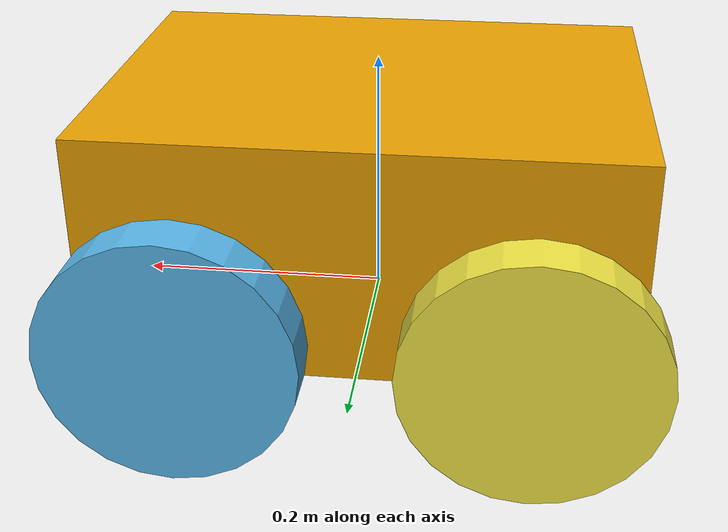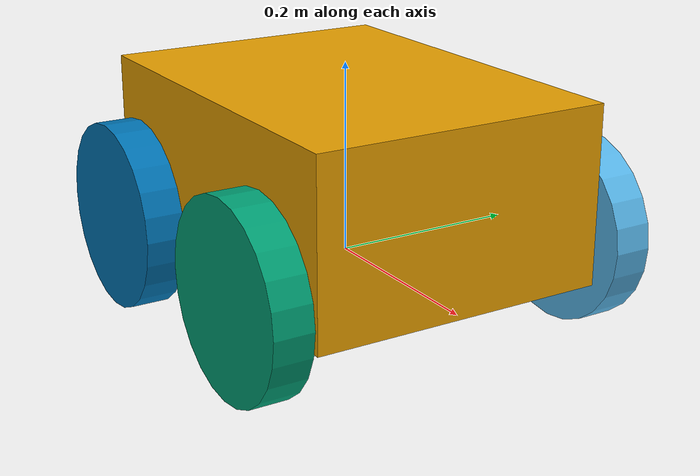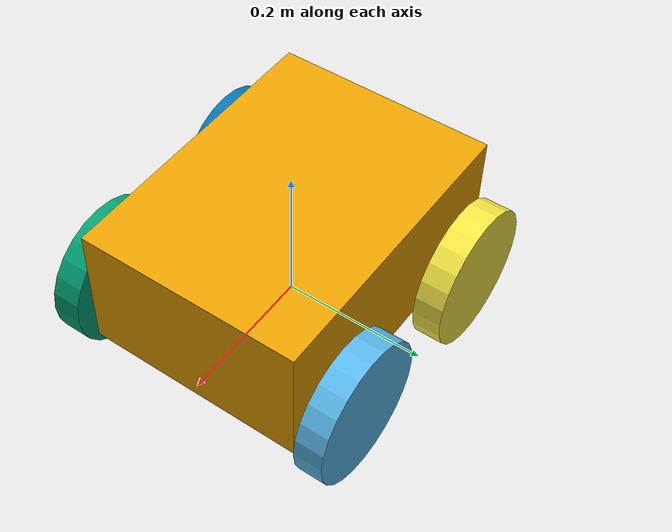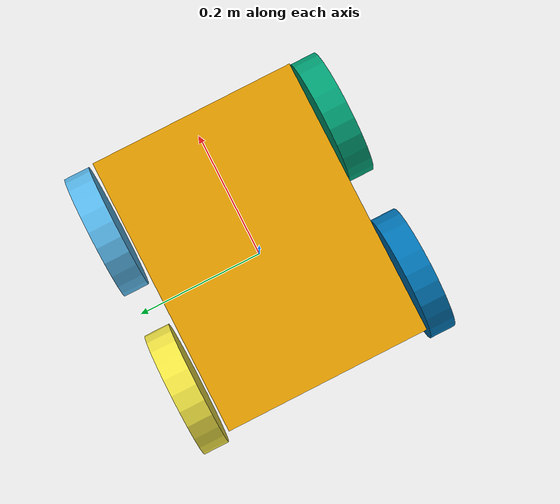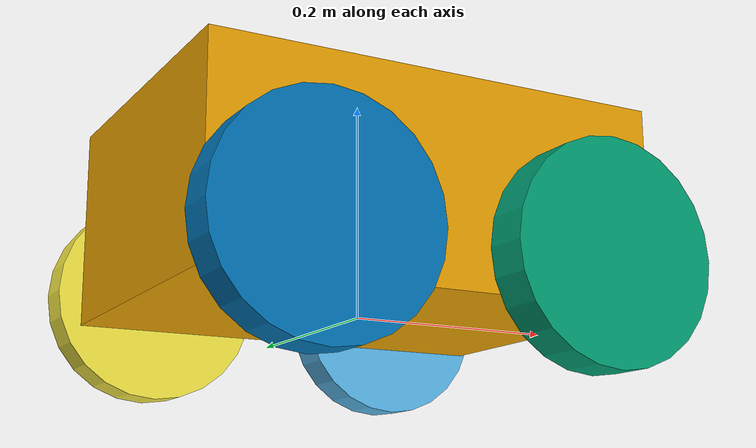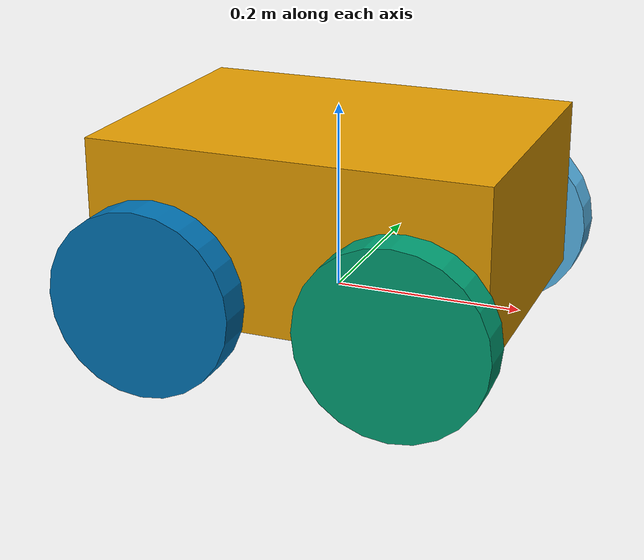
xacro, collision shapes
<?xml version='1.0' encoding='utf-8'?>
<robot name="X2" xmlns:xacro="http://ros.org/wiki/xacro">
  <xacro:arg name="name" default="X2"/>
  <xacro:property name="robot_namespace" value="$(arg name)"/>

  <link name='${robot_namespace}/base_link'>
    <inertial>
      <origin xyz='0.011999 0.002 0.066996' rpy='0 -0 0'/>
      <mass value='16.524'/>
      <inertia ixx='0.320605' ixy='-0.000800023' ixz='0.0163992' iyy='0.399205' iyz='-0.000900133' izz='0.455501'/>
    </inertial>
    <collision name='chassis_collision'>
      <origin xyz='0 0 0.092' rpy='0 -0 0'/>
      <geometry>
        <box size='0.42 0.31 0.184'/>
      </geometry>
    </collision>
    <visual name='chassis_visual'>
      <origin xyz='0 0 -0.0655' rpy='1.5708 0 -1.5708'/>
      <geometry>
        <mesh filename='package://ssci_x2_sensor_config_1/meshes/x2_chassis.dae' scale='1 1 1'/>
      </geometry>
    </visual>
    <visual name='navsat_visual_1'>
      <origin xyz='-0.18 0.126 0.1895' rpy='0 -0 0'/>
      <geometry>
        <cylinder radius='0.026' length='0.016'/>
      </geometry>
    </visual>
    <visual name='center_left_headlight_visual'>
      <origin xyz='0.22 0.05 0.0845' rpy='0 0 -3.14159'/>
      <geometry>
        <mesh filename='package://ssci_x2_sensor_config_1/meshes/headlight.dae' scale='1 1 1'/>
      </geometry>
    </visual>
    <visual name='left_headlight_visual'>
      <origin xyz='0.22 0.145 0.0845' rpy='0 0 -3.14159'/>
      <geometry>
        <mesh filename='package://ssci_x2_sensor_config_1/meshes/headlight.dae' scale='1 1 1'/>
      </geometry>
    </visual>
    <visual name='center_right_headlight_visual'>
      <origin xyz='0.22 -0.05 0.0845' rpy='0 0 -3.14159'/>
      <geometry>
        <mesh filename='package://ssci_x2_sensor_config_1/meshes/headlight.dae' scale='1 1 1'/>
      </geometry>
    </visual>
    <visual name='right_headlight_visual'>
      <origin xyz='0.22 -0.145 0.0845' rpy='0 0 -3.14159'/>
      <geometry>
        <mesh filename='package://ssci_x2_sensor_config_1/meshes/headlight.dae' scale='1 1 1'/>
      </geometry>
    </visual>
    <visual name='camera_visual'>
      <origin xyz='0.23 0 0.19' rpy='0 -0 0'/>
      <geometry>
        <box size='0.02 0.02 0.02'/>
      </geometry>
    </visual>
    <visual name='laser_visual'>
      <origin xyz='0.08 0 0.3' rpy='0 -0 0'/>
      <geometry>
        <cylinder radius='0.03' length='0.1'/>
      </geometry>
    </visual>
  </link>
  <sensor name='imu_sensor' update_rate='1000'>
    <parent link='${robot_namespace}/base_link'/>
    <origin xyz='0 0 0' rpy='0 -0 0'/>
  </sensor>
  <sensor name='camera_front' update_rate='20'>
    <parent link='${robot_namespace}/base_link'/>
    <origin xyz='0.23 0 0.19' rpy='0 -0 0'/>
    <camera>
      <image width='1280' height='960' format='R8G8B8' hfov='1.0472' near='0.01' far='300' />
    </camera>
  </sensor>
  <sensor name='top_laser' update_rate='50'>
    <parent link='${robot_namespace}/base_link'/>
    <origin xyz='0 0 0.1' rpy='0 1.57 0'/>
  </sensor>
  <sensor name='front_laser' update_rate='15'>
    <parent link='${robot_namespace}/base_link'/>
    <origin xyz='0.08 0 0.394' rpy='0 -0 0'/>
  </sensor>
  <link name='${robot_namespace}/front_left_wheel'>
    <inertial>
      <origin xyz='0 0 0' rpy='0 -0 0'/>
      <mass value='0.477'/>
      <inertia ixx='0.0013' ixy='0' ixz='0' iyy='0.0024' iyz='0' izz='0.0013'/>
    </inertial>
    <collision name='collision'>
      <origin xyz='0 0 0' rpy='1.5708 -0 0'/>
      <geometry>
        <cylinder radius='0.098' length='0.04'/>
      </geometry>
    </collision>
    <visual name='visual'>
      <origin xyz='0 0 0' rpy='1.5708 -0 0'/>
      <geometry>
        <mesh filename='package://ssci_x2_sensor_config_1/meshes/x2_wheel_left.dae' scale='1 1 1'/>
      </geometry>
    </visual>
  </link>
  <link name='${robot_namespace}/front_right_wheel'>
    <inertial>
      <origin xyz='0 0 0' rpy='0 -0 0'/>
      <mass value='0.477'/>
      <inertia ixx='0.0013' ixy='0' ixz='0' iyy='0.0024' iyz='0' izz='0.0013'/>
    </inertial>
    <collision name='collision'>
      <origin xyz='0 0 0' rpy='1.5708 -0 0'/>
      <geometry>
        <cylinder radius='0.098' length='0.04'/>
      </geometry>
    </collision>
    <visual name='visual'>
      <origin xyz='0 0 0' rpy='1.5708 -0 0'/>
      <geometry>
        <mesh filename='package://ssci_x2_sensor_config_1/meshes/x2_wheel_right.dae' scale='1 1 1'/>
      </geometry>
    </visual>
  </link>
  <link name='${robot_namespace}/rear_left_wheel'>
    <inertial>
      <origin xyz='0 0 0' rpy='0 -0 0'/>
      <mass value='0.477'/>
      <inertia ixx='0.0013' ixy='0' ixz='0' iyy='0.0024' iyz='0' izz='0.0013'/>
    </inertial>
    <collision name='collision'>
      <origin xyz='0 0 0' rpy='1.5708 -0 0'/>
      <geometry>
        <cylinder radius='0.098' length='0.04'/>
      </geometry>
    </collision>
    <visual name='visual'>
      <origin xyz='0 0 0' rpy='1.5708 -0 0'/>
      <geometry>
        <mesh filename='package://ssci_x2_sensor_config_1/meshes/x2_wheel_left.dae' scale='1 1 1'/>
      </geometry>
    </visual>
  </link>
  <link name='${robot_namespace}/rear_right_wheel'>
    <inertial>
      <origin xyz='0 0 0' rpy='0 -0 0'/>
      <mass value='0.477'/>
      <inertia ixx='0.0013' ixy='0' ixz='0' iyy='0.0024' iyz='0' izz='0.0013'/>
    </inertial>
    <collision name='collision'>
      <origin xyz='0 0 0' rpy='1.5708 -0 0'/>
      <geometry>
        <cylinder radius='0.098' length='0.04'/>
      </geometry>
    </collision>
    <visual name='visual'>
      <origin xyz='0 0 0' rpy='1.5708 -0 0'/>
      <geometry>
        <mesh filename='package://ssci_x2_sensor_config_1/meshes/x2_wheel_right.dae' scale='1 1 1'/>
      </geometry>
    </visual>
  </link>
  <joint name='front_left_wheel_joint' type='revolute'>
    <origin xyz='0.131 0.187795 0.0345' rpy='0 -0 0'/>
    <parent link='${robot_namespace}/base_link'/>
    <child link='${robot_namespace}/front_left_wheel'/>
    <axis xyz='0 1 0'/>
    <limit lower='-1e+16' upper='1e+16' effort='-1' velocity='-1'/>
  </joint>
  <joint name='rear_left_wheel_joint' type='revolute'>
    <origin xyz='-0.131 0.187795 0.0345' rpy='0 -0 0'/>
    <parent link='${robot_namespace}/base_link'/>
    <child link='${robot_namespace}/rear_left_wheel'/>
    <axis xyz='0 1 0'/>
    <limit lower='-1.79769e+308' upper='1.79769e+308' effort='-1' velocity='-1'/>
  </joint>
  <joint name='rear_right_wheel_joint' type='revolute'>
    <origin xyz='-0.131 -0.187795 0.0345' rpy='0 -0 0'/>
    <parent link='${robot_namespace}/base_link'/>
    <child link='${robot_namespace}/rear_right_wheel'/>
    <axis xyz='0 1 0'/>
    <limit lower='-1.79769e+308' upper='1.79769e+308' effort='-1' velocity='-1'/>
  </joint>
  <joint name='front_right_wheel_joint' type='revolute'>
    <origin xyz='0.131 -0.187795 0.0345' rpy='0 -0 0'/>
    <parent link='${robot_namespace}/base_link'/>
    <child link='${robot_namespace}/front_right_wheel'/>
    <axis xyz='0 1 0'/>
    <limit lower='-1.79769e+308' upper='1.79769e+308' effort='-1' velocity='-1'/>
  </joint>
</robot>
